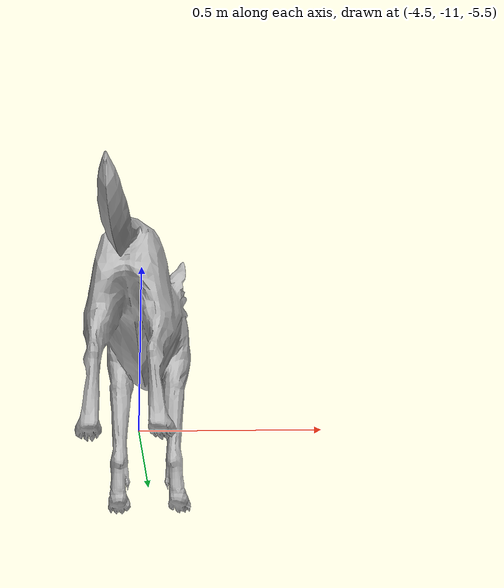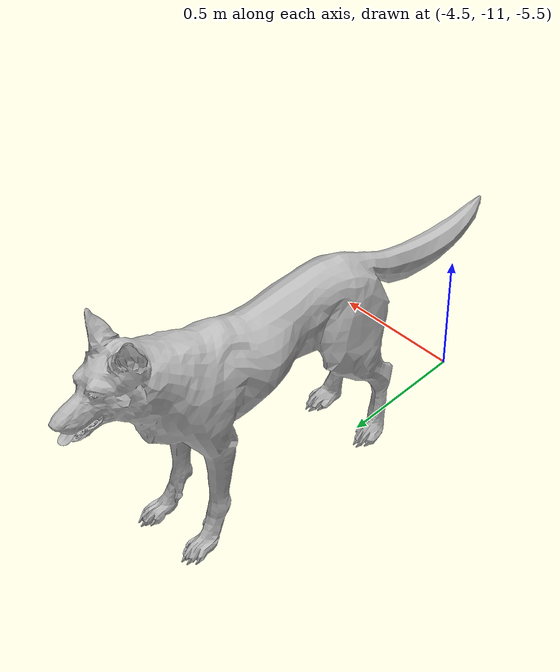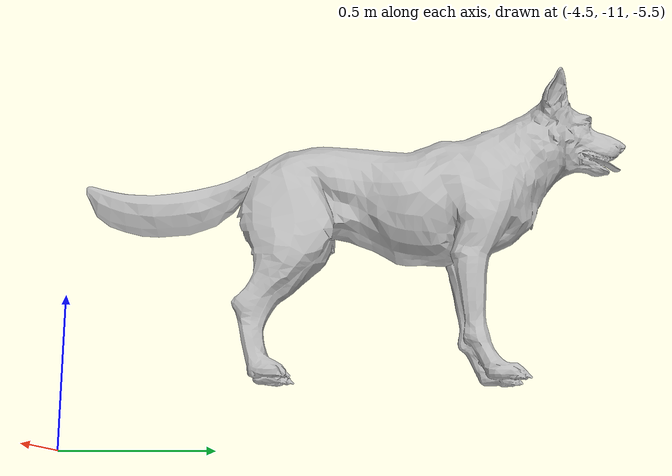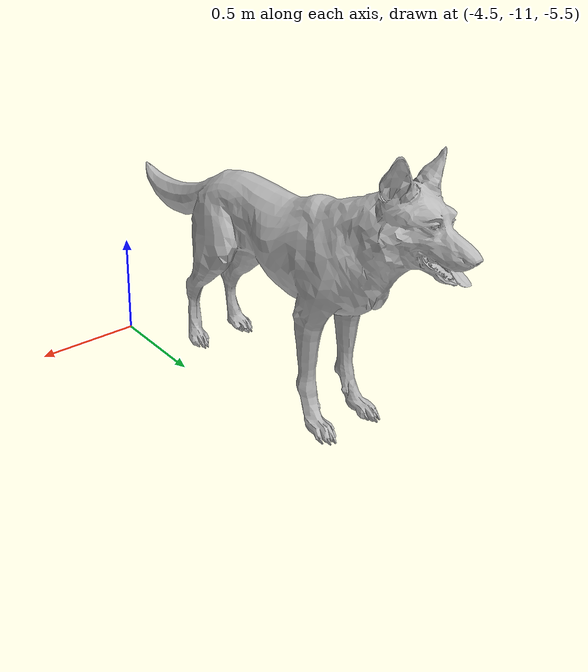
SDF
<?xml version="1.0" ?>
<sdf version="1.5">
  <model name="dog">
    <link name="link">

      <collision name="dog">
        <pose>0 0 0.02 0 0 1.57</pose>
        <geometry>
          <mesh>
            <uri>model://dog/meshes/dog.dae</uri>
            <scale>1 1 1</scale>
          </mesh>
        </geometry>
      </collision>

      <visual name="visual">
        <pose>0 0 0.02 0 0 1.57</pose>
        <geometry>
          <mesh>
            <uri>model://dog/meshes/dog.dae</uri>
            <scale>1 1 1</scale>
          </mesh>
        </geometry>
      </visual>
    </link>
  </model>
</sdf>
